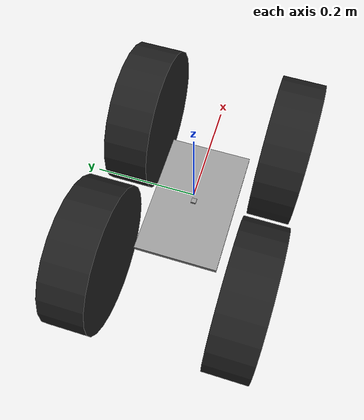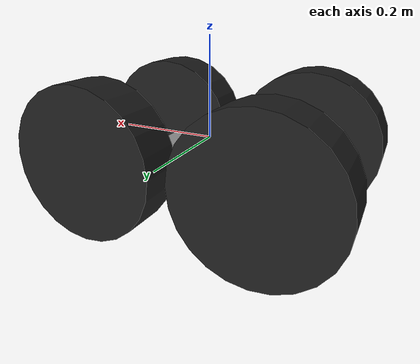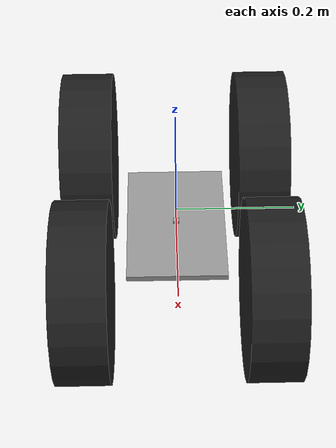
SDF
<?xml version='1.0'?>
<sdf version='1.6'>
  <model name='monster1'>
    <link name='base_link'>
      <pose frame=''>0 -0 -0.029441 0 -0 0</pose>
      <inertial>
        <pose frame=''>-0.006634 0 -0.003536 0 -0 0</pose>
        <mass>13.795</mass>
        <inertia>
          <ixx>0.0121404</ixx>
          <ixy>0</ixy>
          <ixz>0.00010207</ixz>
          <iyy>0.0201814</iyy>
          <iyz>0</iyz>
          <izz>0.0301018</izz>
        </inertia>
      </inertial>
      <self_collide>0</self_collide>
      <kinematic>0</kinematic>
      <velocity_decay/>
      <visual name='base_link_visual'>
        <pose frame=''>0 0 0 0 -0 0</pose>
        <geometry>
          <box>
            <size>0.01 0.01 0.01</size>
          </box>
        </geometry>
        <material>
          <script>
            <name>Gazebo/Grey</name>
            <uri>file://media/materials/scripts/gazebo.material</uri>
          </script>
          <ambient>0.3 0.3 0.3 1</ambient>
          <diffuse>0.7 0.7 0.7 1</diffuse>
          <specular>0.01 0.01 0.01 1</specular>
          <emissive>0 0 0 1</emissive>
          <shader type='vertex'>
            <normal_map>__default__</normal_map>
          </shader>
        </material>
        <cast_shadows>1</cast_shadows>
        <transparency>0</transparency>
      </visual>
      <visual name='base_link_fixed_joint_lump__chassis_visual_1'>
        <pose frame=''>0 0 -0.005 0 -0 0</pose>
        <geometry>
          <box>
            <size>0.258 0.168 0.01</size>
          </box>
        </geometry>
        <material>
          <script>
            <name>Gazebo/Grey</name>
            <uri>file://media/materials/scripts/gazebo.material</uri>
          </script>
          <ambient>0.3 0.3 0.3 1</ambient>
          <diffuse>0.7 0.7 0.7 1</diffuse>
          <specular>0.01 0.01 0.01 1</specular>
          <emissive>0 0 0 1</emissive>
          <shader type='vertex'>
            <normal_map>__default__</normal_map>
          </shader>
        </material>
        <cast_shadows>1</cast_shadows>
        <transparency>0</transparency>
      </visual>
      <collision name='base_link_fixed_joint_lump__chassis_collision'>
        <laser_retro>0</laser_retro>
        <max_contacts>10</max_contacts>
        <pose frame=''>0 0 -0.005 0 -0 0</pose>
        <geometry>
          <box>
            <size>0.258 0.168 0.01</size>
          </box>
        </geometry>
        <surface>
          <friction>
            <ode>
              <mu>0.1</mu>
              <mu2>0.1</mu2>
              <fdir1>0 0 0</fdir1>
              <slip1>0</slip1>
              <slip2>0</slip2>
            </ode>
            <torsional>
              <coefficient>1</coefficient>
              <patch_radius>0</patch_radius>
              <surface_radius>0</surface_radius>
              <use_patch_radius>1</use_patch_radius>
              <ode>
                <slip>0</slip>
              </ode>
            </torsional>
          </friction>
          <bounce>
            <restitution_coefficient>0</restitution_coefficient>
            <threshold>1e+06</threshold>
          </bounce>
          <contact>
            <collide_without_contact>0</collide_without_contact>
            <collide_without_contact_bitmask>1</collide_without_contact_bitmask>
            <collide_bitmask>1</collide_bitmask>
            <ode>
              <soft_cfm>0</soft_cfm>
              <soft_erp>0.2</soft_erp>
              <kp>1e+13</kp>
              <kd>1</kd>
              <max_vel>0.01</max_vel>
              <min_depth>0</min_depth>
            </ode>
            <bullet>
              <split_impulse>1</split_impulse>
              <split_impulse_penetration_threshold>-0.01</split_impulse_penetration_threshold>
              <soft_cfm>0</soft_cfm>
              <soft_erp>0.2</soft_erp>
              <kp>1e+13</kp>
              <kd>1</kd>
            </bullet>
          </contact>
        </surface>
      </collision>
    </link>
    <link name='left_front_axle_carrier'>
      <pose frame=''>0.1675 0.1525 -0.0235 0 -0 0</pose>
      <inertial>
        <pose frame=''>0 0 0 0 -0 0</pose>
        <mass>0.001</mass>
        <inertia>
          <ixx>0.001</ixx>
          <ixy>0</ixy>
          <ixz>0</ixz>
          <iyy>0.001</iyy>
          <iyz>0</iyz>
          <izz>0.001</izz>
        </inertia>
      </inertial>
      <self_collide>0</self_collide>
      <kinematic>0</kinematic>
    </link>
    <link name='left_front_wheel'>
      <pose frame=''>0.1675 0.1525 -0.0235 1.5708 -0 0</pose>
      <inertial>
        <pose frame=''>0 0 0 0 -0 0</pose>
        <mass>15</mass>
        <inertia>
          <ixx>0.00074647</ixx>
          <ixy>0</ixy>
          <ixz>0</ixz>
          <iyy>0.00074647</iyy>
          <iyz>0</iyz>
          <izz>0.00111094</izz>
        </inertia>
      </inertial>
      <self_collide>0</self_collide>
      <kinematic>0</kinematic>
      <velocity_decay/>
      <gravity>1</gravity>
      <visual name='left_front_wheel_visual'>
        <pose frame=''>0 0 0 0 -0 0</pose>
        <geometry>
          <cylinder>
            <length>0.0889</length>
            <radius>0.15</radius>
          </cylinder>
        </geometry>
        <material>
          <script>
            <name>Gazebo/Black</name>
            <uri>file://media/materials/scripts/gazebo.material</uri>
          </script>
          <ambient>0 0 0 1</ambient>
          <diffuse>0 0 0 1</diffuse>
          <specular>0.1 0.1 0.1 1</specular>
          <emissive>0 0 0 1</emissive>
          <shader type='vertex'>
            <normal_map>__default__</normal_map>
          </shader>
        </material>
        <cast_shadows>1</cast_shadows>
        <transparency>0</transparency>
      </visual>
      <collision name='left_front_wheel_collision'>
        <laser_retro>0</laser_retro>
        <max_contacts>10</max_contacts>
        <pose frame=''>0 0 0 0 -0 0</pose>
        <geometry>
          <cylinder>
            <radius>0.15</radius>
            <length>0.0889</length>
          </cylinder>
        </geometry>
        <surface>
          <friction>
            <ode>
              <mu>1</mu>
              <mu2>1</mu2>
              <fdir1>0 0 0</fdir1>
              <slip1>0</slip1>
              <slip2>0</slip2>
            </ode>
            <torsional>
              <coefficient>1</coefficient>
              <patch_radius>0</patch_radius>
              <surface_radius>0</surface_radius>
              <use_patch_radius>1</use_patch_radius>
              <ode>
                <slip>0</slip>
              </ode>
            </torsional>
          </friction>
          <bounce>
            <restitution_coefficient>0</restitution_coefficient>
            <threshold>1e+06</threshold>
          </bounce>
          <contact>
            <collide_without_contact>0</collide_without_contact>
            <collide_without_contact_bitmask>1</collide_without_contact_bitmask>
            <collide_bitmask>1</collide_bitmask>
            <ode>
              <kp>1e+6</kp>
              <kd>1</kd>
              <max_vel>10000.0</max_vel>
              <min_depth>0.002</min_depth>
            </ode>
            <bullet>
              <split_impulse>1</split_impulse>
              <split_impulse_penetration_threshold>-0.01</split_impulse_penetration_threshold>
              <soft_cfm>0</soft_cfm>
              <soft_erp>0.2</soft_erp>
              <kp>1e+13</kp>
              <kd>1</kd>
            </bullet>
          </contact>
        </surface>
      </collision>
    </link>
    <link name='left_rear_axle_carrier'>
      <pose frame=''>-0.1675 0.1525 -0.0235 0 -0 0</pose>
      <inertial>
        <pose frame=''>0 0 0 0 -0 0</pose>
        <mass>0.001</mass>
        <inertia>
          <ixx>0.001</ixx>
          <ixy>0</ixy>
          <ixz>0</ixz>
          <iyy>0.001</iyy>
          <iyz>0</iyz>
          <izz>0.001</izz>
        </inertia>
      </inertial>
      <self_collide>0</self_collide>
      <kinematic>0</kinematic>
    </link>
    <link name='left_rear_wheel'>
      <pose frame=''>-0.1675 0.1525 -0.0235 1.5708 -0 0</pose>
      <inertial>
        <pose frame=''>0 0 0 0 -0 0</pose>
        <mass>15</mass>
        <inertia>
          <ixx>0.00074647</ixx>
          <ixy>0</ixy>
          <ixz>0</ixz>
          <iyy>0.00074647</iyy>
          <iyz>0</iyz>
          <izz>0.00111094</izz>
        </inertia>
      </inertial>
      <self_collide>0</self_collide>
      <kinematic>0</kinematic>
      <velocity_decay/>
      <gravity>1</gravity>
      <visual name='left_rear_wheel_visual'>
        <pose frame=''>0 0 0 0 -0 0</pose>
        <geometry>
          <cylinder>
            <length>0.0889</length>
            <radius>0.15</radius>
          </cylinder>
        </geometry>
        <material>
          <script>
            <name>Gazebo/Black</name>
            <uri>file://media/materials/scripts/gazebo.material</uri>
          </script>
          <ambient>0 0 0 1</ambient>
          <diffuse>0 0 0 1</diffuse>
          <specular>0.1 0.1 0.1 1</specular>
          <emissive>0 0 0 1</emissive>
          <shader type='vertex'>
            <normal_map>__default__</normal_map>
          </shader>
        </material>
        <cast_shadows>1</cast_shadows>
        <transparency>0</transparency>
      </visual>
      <collision name='left_rear_wheel_collision'>
        <laser_retro>0</laser_retro>
        <max_contacts>10</max_contacts>
        <pose frame=''>0 0 0 0 -0 0</pose>
        <geometry>
          <cylinder>
            <radius>0.15</radius>
            <length>0.0889</length>
          </cylinder>
        </geometry>
        <surface>
          <friction>
            <ode>
              <mu>1</mu>
              <mu2>1</mu2>
              <fdir1>0 0 0</fdir1>
              <slip1>0</slip1>
              <slip2>0</slip2>
            </ode>
            <torsional>
              <coefficient>1</coefficient>
              <patch_radius>0</patch_radius>
              <surface_radius>0</surface_radius>
              <use_patch_radius>1</use_patch_radius>
              <ode>
                <slip>0</slip>
              </ode>
            </torsional>
          </friction>
          <bounce>
            <restitution_coefficient>0</restitution_coefficient>
            <threshold>1e+06</threshold>
          </bounce>
          <contact>
            <collide_without_contact>0</collide_without_contact>
            <collide_without_contact_bitmask>1</collide_without_contact_bitmask>
            <collide_bitmask>1</collide_bitmask>
            <ode>
              <kp>1e+6</kp>
              <kd>1</kd>
              <max_vel>10000.0</max_vel>
              <min_depth>0.002</min_depth>
            </ode>
            <bullet>
              <split_impulse>1</split_impulse>
              <split_impulse_penetration_threshold>-0.01</split_impulse_penetration_threshold>
              <soft_cfm>0</soft_cfm>
              <soft_erp>0.2</soft_erp>
              <kp>1e+13</kp>
              <kd>1</kd>
            </bullet>
          </contact>
        </surface>
      </collision>
    </link>
    <link name='left_steering_link'>
      <pose frame=''>0.1675 0.1525 -0.0235 0 -0 0</pose>
      <inertial>
        <pose frame=''>0 0 0 0 -0 0</pose>
        <mass>0.001</mass>
        <inertia>
          <ixx>0.001</ixx>
          <ixy>0</ixy>
          <ixz>0</ixz>
          <iyy>0.001</iyy>
          <iyz>0</iyz>
          <izz>0.001</izz>
        </inertia>
      </inertial>
      <self_collide>0</self_collide>
      <kinematic>0</kinematic>
    </link>
    <link name='right_front_axle_carrier'>
      <pose frame=''>0.1675 -0.1525 -0.0235 0 -0 0</pose>
      <inertial>
        <pose frame=''>0 0 0 0 -0 0</pose>
        <mass>0.001</mass>
        <inertia>
          <ixx>0.001</ixx>
          <ixy>0</ixy>
          <ixz>0</ixz>
          <iyy>0.001</iyy>
          <iyz>0</iyz>
          <izz>0.001</izz>
        </inertia>
      </inertial>
      <self_collide>0</self_collide>
      <kinematic>0</kinematic>
    </link>
    <link name='right_front_wheel'>
      <pose frame=''>0.1675 -0.1525 -0.0235 1.5708 -0 0</pose>
      <inertial>
        <pose frame=''>0 0 0 0 -0 0</pose>
        <mass>15</mass>
        <inertia>
          <ixx>0.00074647</ixx>
          <ixy>0</ixy>
          <ixz>0</ixz>
          <iyy>0.00074647</iyy>
          <iyz>0</iyz>
          <izz>0.00111094</izz>
        </inertia>
      </inertial>
      <self_collide>0</self_collide>
      <kinematic>0</kinematic>
      <velocity_decay/>
      <gravity>1</gravity>
      <visual name='right_front_wheel_visual'>
        <pose frame=''>0 0 0 0 -0 0</pose>
        <geometry>
          <cylinder>
            <length>0.0889</length>
            <radius>0.15</radius>
          </cylinder>
        </geometry>
        <material>
          <script>
            <name>Gazebo/Black</name>
            <uri>file://media/materials/scripts/gazebo.material</uri>
          </script>
          <ambient>0 0 0 1</ambient>
          <diffuse>0 0 0 1</diffuse>
          <specular>0.1 0.1 0.1 1</specular>
          <emissive>0 0 0 1</emissive>
          <shader type='vertex'>
            <normal_map>__default__</normal_map>
          </shader>
        </material>
        <cast_shadows>1</cast_shadows>
        <transparency>0</transparency>
      </visual>
      <collision name='right_front_wheel_collision'>
        <laser_retro>0</laser_retro>
        <max_contacts>10</max_contacts>
        <pose frame=''>0 0 0 0 -0 0</pose>
        <geometry>
          <cylinder>
            <radius>0.15</radius>
            <length>0.0889</length>
          </cylinder>
        </geometry>
        <surface>
          <friction>
            <ode>
              <mu>1</mu>
              <mu2>1</mu2>
              <fdir1>0 0 0</fdir1>
              <slip1>0</slip1>
              <slip2>0</slip2>
            </ode>
            <torsional>
              <coefficient>1</coefficient>
              <patch_radius>0</patch_radius>
              <surface_radius>0</surface_radius>
              <use_patch_radius>1</use_patch_radius>
              <ode>
                <slip>0</slip>
              </ode>
            </torsional>
          </friction>
          <bounce>
            <restitution_coefficient>0</restitution_coefficient>
            <threshold>1e+06</threshold>
          </bounce>
          <contact>
            <collide_without_contact>0</collide_without_contact>
            <collide_without_contact_bitmask>1</collide_without_contact_bitmask>
            <collide_bitmask>1</collide_bitmask>
            <ode>
              <kp>1e+6</kp>
              <kd>1</kd>
              <max_vel>10000.0</max_vel>
              <min_depth>0.002</min_depth>
            </ode>
            <bullet>
              <split_impulse>1</split_impulse>
              <split_impulse_penetration_threshold>-0.01</split_impulse_penetration_threshold>
              <soft_cfm>0</soft_cfm>
              <soft_erp>0.2</soft_erp>
              <kp>1e+13</kp>
              <kd>1</kd>
            </bullet>
          </contact>
        </surface>
      </collision>
    </link>
    <link name='right_rear_axle_carrier'>
      <pose frame=''>-0.1675 -0.1525 -0.0235 0 -0 0</pose>
      <inertial>
        <pose frame=''>0 0 0 0 -0 0</pose>
        <mass>0.001</mass>
        <inertia>
          <ixx>0.001</ixx>
          <ixy>0</ixy>
          <ixz>0</ixz>
          <iyy>0.001</iyy>
          <iyz>0</iyz>
          <izz>0.001</izz>
        </inertia>
      </inertial>
      <self_collide>0</self_collide>
      <kinematic>0</kinematic>
    </link>
    <link name='right_rear_wheel'>
      <pose frame=''>-0.1675 -0.1525 -0.0235 1.5708 -0 0</pose>
      <inertial>
        <pose frame=''>0 0 0 0 -0 0</pose>
        <mass>15</mass>
        <inertia>
          <ixx>0.00074647</ixx>
          <ixy>0</ixy>
          <ixz>0</ixz>
          <iyy>0.00074647</iyy>
          <iyz>0</iyz>
          <izz>0.00111094</izz>
        </inertia>
      </inertial>
      <self_collide>0</self_collide>
      <kinematic>0</kinematic>
      <velocity_decay/>
      <gravity>1</gravity>
      <visual name='right_rear_wheel_visual'>
        <pose frame=''>0 0 0 0 -0 0</pose>
        <geometry>
          <cylinder>
            <length>0.0889</length>
            <radius>0.15</radius>
          </cylinder>
        </geometry>
        <material>
          <script>
            <name>Gazebo/Black</name>
            <uri>file://media/materials/scripts/gazebo.material</uri>
          </script>
          <ambient>0 0 0 1</ambient>
          <diffuse>0 0 0 1</diffuse>
          <specular>0.1 0.1 0.1 1</specular>
          <emissive>0 0 0 1</emissive>
          <shader type='vertex'>
            <normal_map>__default__</normal_map>
          </shader>
        </material>
        <cast_shadows>1</cast_shadows>
        <transparency>0</transparency>
      </visual>
      <collision name='right_rear_wheel_collision'>
        <laser_retro>0</laser_retro>
        <max_contacts>10</max_contacts>
        <pose frame=''>0 0 0 0 -0 0</pose>
        <geometry>
          <cylinder>
            <radius>0.15</radius>
            <length>0.0889</length>
          </cylinder>
        </geometry>
        <surface>
          <friction>
            <ode>
              <mu>1</mu>
              <mu2>1</mu2>
              <fdir1>0 0 0</fdir1>
              <slip1>0</slip1>
              <slip2>0</slip2>
            </ode>
            <torsional>
              <coefficient>1</coefficient>
              <patch_radius>0</patch_radius>
              <surface_radius>0</surface_radius>
              <use_patch_radius>1</use_patch_radius>
              <ode>
                <slip>0</slip>
              </ode>
            </torsional>
          </friction>
          <bounce>
            <restitution_coefficient>0</restitution_coefficient>
            <threshold>1e+06</threshold>
          </bounce>
          <contact>
            <collide_without_contact>0</collide_without_contact>
            <collide_without_contact_bitmask>1</collide_without_contact_bitmask>
            <collide_bitmask>1</collide_bitmask>
            <ode>
              <kp>1e+6</kp>
              <kd>1</kd>
              <max_vel>10000.0</max_vel>
              <min_depth>0.002</min_depth>
            </ode>
            <bullet>
              <split_impulse>1</split_impulse>
              <split_impulse_penetration_threshold>-0.01</split_impulse_penetration_threshold>
              <soft_cfm>0</soft_cfm>
              <soft_erp>0.2</soft_erp>
              <kp>1e+13</kp>
              <kd>1</kd>
            </bullet>
          </contact>
        </surface>
      </collision>
    </link>
    <link name='right_steering_link'>
      <pose frame=''>0.1675 -0.1525 -0.0235 0 -0 0</pose>
      <inertial>
        <pose frame=''>0 0 0 0 -0 0</pose>
        <mass>0.001</mass>
        <inertia>
          <ixx>0.001</ixx>
          <ixy>0</ixy>
          <ixz>0</ixz>
          <iyy>0.001</iyy>
          <iyz>0</iyz>
          <izz>0.001</izz>
        </inertia>
      </inertial>
      <self_collide>0</self_collide>
      <kinematic>0</kinematic>
    </link>
    <joint name='left_front_axle' type='revolute'>
      <parent>left_front_axle_carrier</parent>
      <child>left_front_wheel</child>
      <pose frame=''>0 0 0 0 -0 0</pose>
      <axis>
        <xyz>0 1 0</xyz>
        <use_parent_model_frame>1</use_parent_model_frame>
        <limit>
          <lower>-1e+16</lower>
          <upper>1e+16</upper>
          <effort>-1</effort>
          <velocity>-1</velocity>
        </limit>
        <dynamics>
          <spring_reference>0</spring_reference>
          <spring_stiffness>0</spring_stiffness>
          <damping>0.01</damping>
          <friction>0</friction>
        </dynamics>
      </axis>
      <physics>
        <ode>
          <implicit_spring_damper>1</implicit_spring_damper>
          <limit>
            <cfm>0</cfm>
            <erp>0.2</erp>
          </limit>
          <suspension>
            <cfm>0</cfm>
            <erp>0.2</erp>
          </suspension>
        </ode>
      </physics>
    </joint>
    <joint name='left_front_shock' type='prismatic'>
      <parent>base_link</parent>
      <child>left_steering_link</child>
      <pose frame=''>0 0 0 0 -0 0</pose>
      <axis>
        <xyz>0 0 -1</xyz>
        <use_parent_model_frame>1</use_parent_model_frame>
        <limit>
          <lower>-0.042</lower>
          <upper>0.042</upper>
          <effort>6.5106</effort>
          <velocity>1000</velocity>
        </limit>
        <dynamics>
          <spring_reference>0</spring_reference>
          <spring_stiffness>0</spring_stiffness>
          <damping>0.1</damping>
          <friction>0</friction>
        </dynamics>
      </axis>
      <physics>
        <ode>
          <implicit_spring_damper>1</implicit_spring_damper>
          <limit>
            <cfm>0</cfm>
            <erp>0.2</erp>
          </limit>
          <suspension>
            <cfm>0</cfm>
            <erp>0.2</erp>
          </suspension>
        </ode>
      </physics>
    </joint>
    <joint name='left_rear_axle' type='revolute'>
      <parent>left_rear_axle_carrier</parent>
      <child>left_rear_wheel</child>
      <pose frame=''>0 0 0 0 -0 0</pose>
      <axis>
        <xyz>0 1 0</xyz>
        <use_parent_model_frame>1</use_parent_model_frame>
        <limit>
          <lower>-1e+16</lower>
          <upper>1e+16</upper>
          <effort>-1</effort>
          <velocity>-1</velocity>
        </limit>
        <dynamics>
          <spring_reference>0</spring_reference>
          <spring_stiffness>0</spring_stiffness>
          <damping>0.01</damping>
          <friction>0</friction>
        </dynamics>
      </axis>
      <physics>
        <ode>
          <implicit_spring_damper>1</implicit_spring_damper>
          <limit>
            <cfm>0</cfm>
            <erp>0.2</erp>
          </limit>
          <suspension>
            <cfm>0</cfm>
            <erp>0.2</erp>
          </suspension>
        </ode>
      </physics>
    </joint>
    <joint name='left_rear_shock' type='prismatic'>
      <parent>base_link</parent>
      <child>left_rear_axle_carrier</child>
      <pose frame=''>0 0 0 0 -0 0</pose>
      <axis>
        <xyz>0 0 -1</xyz>
        <use_parent_model_frame>1</use_parent_model_frame>
        <limit>
          <lower>-0.042</lower>
          <upper>0.042</upper>
          <effort>6.5106</effort>
          <velocity>1000</velocity>
        </limit>
        <dynamics>
          <spring_reference>0</spring_reference>
          <spring_stiffness>0</spring_stiffness>
          <damping>0.1</damping>
          <friction>0</friction>
        </dynamics>
      </axis>
      <physics>
        <ode>
          <implicit_spring_damper>1</implicit_spring_damper>
          <limit>
            <cfm>0</cfm>
            <erp>0.2</erp>
          </limit>
          <suspension>
            <cfm>0</cfm>
            <erp>0.2</erp>
          </suspension>
        </ode>
      </physics>
    </joint>
    <joint name='left_steering_joint' type='revolute'>
      <parent>left_steering_link</parent>
      <child>left_front_axle_carrier</child>
      <pose frame=''>0 0 0 0 -0 0</pose>
      <axis>
        <xyz>0 0 1</xyz>
        <use_parent_model_frame>1</use_parent_model_frame>
        <limit>
          <lower>-0.785398</lower>
          <upper>0.785398</upper>
          <effort>0.5649</effort>
          <velocity>4.553</velocity>
        </limit>
        <dynamics>
          <spring_reference>0</spring_reference>
          <spring_stiffness>0</spring_stiffness>
          <damping>1</damping>
          <friction>0</friction>
        </dynamics>
      </axis>
      <physics>
        <ode>
          <implicit_spring_damper>1</implicit_spring_damper>
          <limit>
            <cfm>0</cfm>
            <erp>0.2</erp>
          </limit>
          <suspension>
            <cfm>0</cfm>
            <erp>0.2</erp>
          </suspension>
        </ode>
      </physics>
    </joint>
    <joint name='right_front_axle' type='revolute'>
      <parent>right_front_axle_carrier</parent>
      <child>right_front_wheel</child>
      <pose frame=''>0 0 0 0 -0 0</pose>
      <axis>
        <xyz>0 1 0</xyz>
        <use_parent_model_frame>1</use_parent_model_frame>
        <limit>
          <lower>-1e+16</lower>
          <upper>1e+16</upper>
          <effort>-1</effort>
          <velocity>-1</velocity>
        </limit>
        <dynamics>
          <spring_reference>0</spring_reference>
          <spring_stiffness>0</spring_stiffness>
          <damping>0.01</damping>
          <friction>0</friction>
        </dynamics>
      </axis>
      <physics>
        <ode>
          <implicit_spring_damper>1</implicit_spring_damper>
          <limit>
            <cfm>0</cfm>
            <erp>0.2</erp>
          </limit>
          <suspension>
            <cfm>0</cfm>
            <erp>0.2</erp>
          </suspension>
        </ode>
      </physics>
    </joint>
    <joint name='right_front_shock' type='prismatic'>
      <parent>base_link</parent>
      <child>right_steering_link</child>
      <pose frame=''>0 0 0 0 -0 0</pose>
      <axis>
        <xyz>0 0 -1</xyz>
        <use_parent_model_frame>1</use_parent_model_frame>
        <limit>
          <lower>-0.042</lower>
          <upper>0.042</upper>
          <effort>6.5106</effort>
          <velocity>1000</velocity>
        </limit>
        <dynamics>
          <spring_reference>0</spring_reference>
          <spring_stiffness>0</spring_stiffness>
          <damping>0.1</damping>
          <friction>0</friction>
        </dynamics>
      </axis>
      <physics>
        <ode>
          <implicit_spring_damper>1</implicit_spring_damper>
          <limit>
            <cfm>0</cfm>
            <erp>0.2</erp>
          </limit>
          <suspension>
            <cfm>0</cfm>
            <erp>0.2</erp>
          </suspension>
        </ode>
      </physics>
    </joint>
    <joint name='right_rear_axle' type='revolute'>
      <parent>right_rear_axle_carrier</parent>
      <child>right_rear_wheel</child>
      <pose frame=''>0 0 0 0 -0 0</pose>
      <axis>
        <xyz>0 1 0</xyz>
        <use_parent_model_frame>1</use_parent_model_frame>
        <limit>
          <lower>-1e+16</lower>
          <upper>1e+16</upper>
          <effort>-1</effort>
          <velocity>-1</velocity>
        </limit>
        <dynamics>
          <spring_reference>0</spring_reference>
          <spring_stiffness>0</spring_stiffness>
          <damping>0.01</damping>
          <friction>0</friction>
        </dynamics>
      </axis>
      <physics>
        <ode>
          <implicit_spring_damper>1</implicit_spring_damper>
          <limit>
            <cfm>0</cfm>
            <erp>0.2</erp>
          </limit>
          <suspension>
            <cfm>0</cfm>
            <erp>0.2</erp>
          </suspension>
        </ode>
      </physics>
    </joint>
    <joint name='right_rear_shock' type='prismatic'>
      <parent>base_link</parent>
      <child>right_rear_axle_carrier</child>
      <pose frame=''>0 0 0 0 -0 0</pose>
      <axis>
        <xyz>0 0 -1</xyz>
        <use_parent_model_frame>1</use_parent_model_frame>
        <limit>
          <lower>-0.042</lower>
          <upper>0.042</upper>
          <effort>6.5106</effort>
          <velocity>1000</velocity>
        </limit>
        <dynamics>
          <spring_reference>0</spring_reference>
          <spring_stiffness>0</spring_stiffness>
          <damping>0.1</damping>
          <friction>0</friction>
        </dynamics>
      </axis>
      <physics>
        <ode>
          <implicit_spring_damper>1</implicit_spring_damper>
          <limit>
            <cfm>0</cfm>
            <erp>0.2</erp>
          </limit>
          <suspension>
            <cfm>0</cfm>
            <erp>0.2</erp>
          </suspension>
        </ode>
      </physics>
    </joint>
    <joint name='right_steering_joint' type='revolute'>
      <parent>right_steering_link</parent>
      <child>right_front_axle_carrier</child>
      <pose frame=''>0 0 0 0 -0 0</pose>
      <axis>
        <xyz>0 0 1</xyz>
        <use_parent_model_frame>1</use_parent_model_frame>
        <limit>
          <lower>-0.785398</lower>
          <upper>0.785398</upper>
          <effort>0.5649</effort>
          <velocity>4.553</velocity>
        </limit>
        <dynamics>
          <spring_reference>0</spring_reference>
          <spring_stiffness>0</spring_stiffness>
          <damping>1</damping>
          <friction>0</friction>
        </dynamics>
      </axis>
      <physics>
        <ode>
          <implicit_spring_damper>1</implicit_spring_damper>
          <limit>
            <cfm>0</cfm>
            <erp>0.2</erp>
          </limit>
          <suspension>
            <cfm>0</cfm>
            <erp>0.2</erp>
          </suspension>
        </ode>
      </physics>
    </joint>
    <static>0</static>
    <allow_auto_disable>1</allow_auto_disable>
    <plugin name='ackermann_drive' filename='libFRCBlueAckermannDrivePlugin.so'>
      <left_joint>left_rear_axle</left_joint>
      <right_joint>right_rear_axle</right_joint>
      <front_left_joint>left_front_axle</front_left_joint>
      <front_right_joint>right_front_axle</front_right_joint>
      <left_steering_joint>left_steering_joint</left_steering_joint>
      <right_steering_joint>right_steering_joint</right_steering_joint>
      <topic>/blue/joy2</topic>
      <torque>160</torque>
      <turn_rate>.1</turn_rate>
      <robotNamespace>/</robotNamespace>
    </plugin>
  </model>
</sdf>
